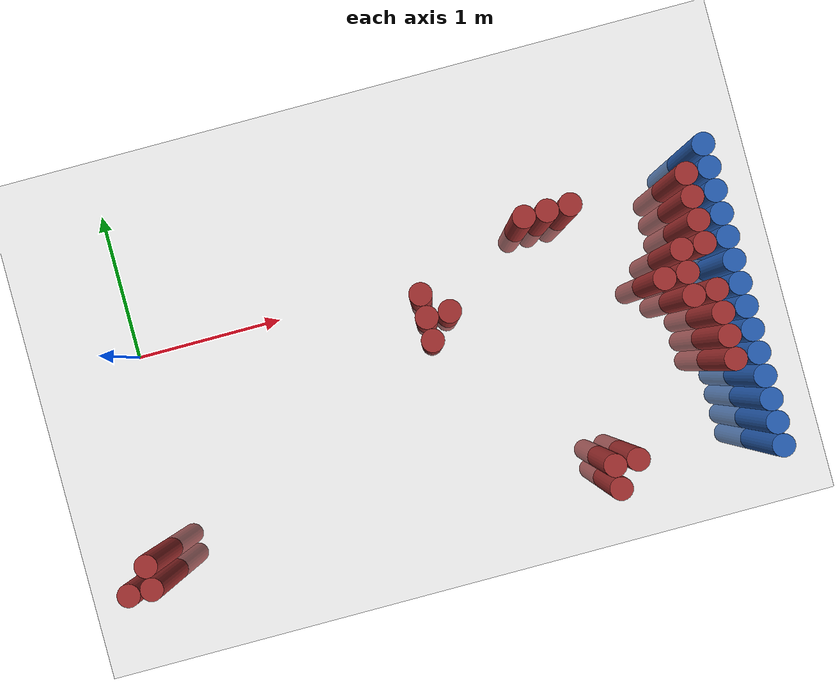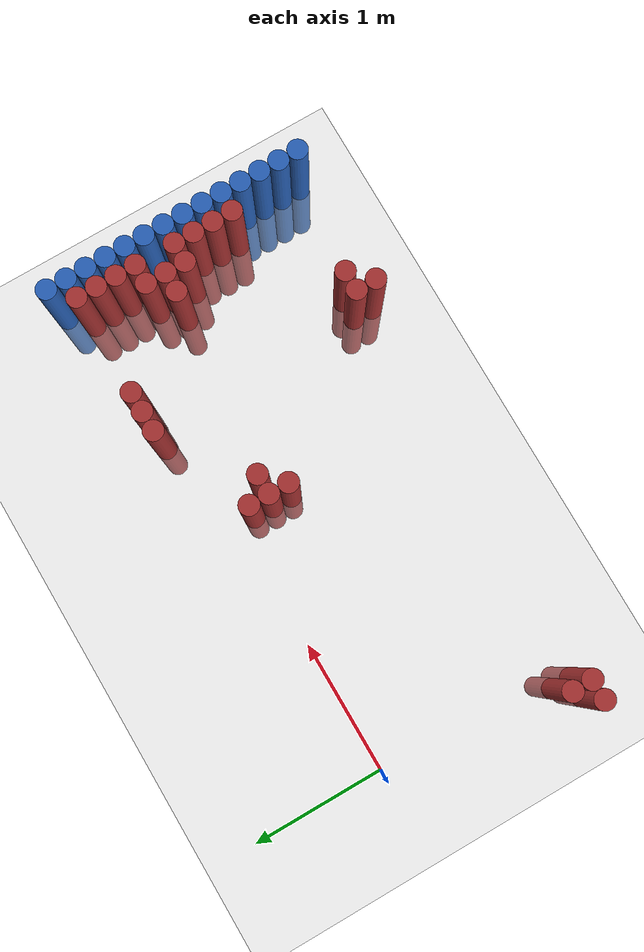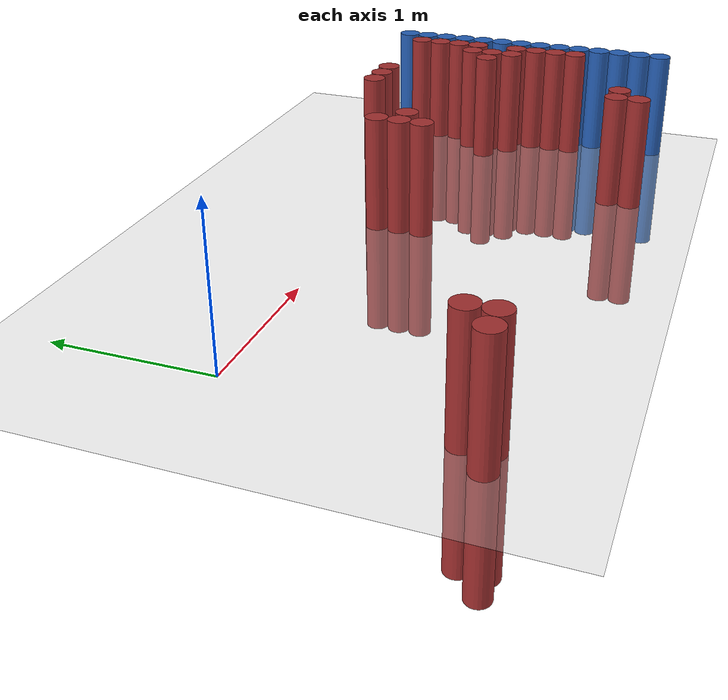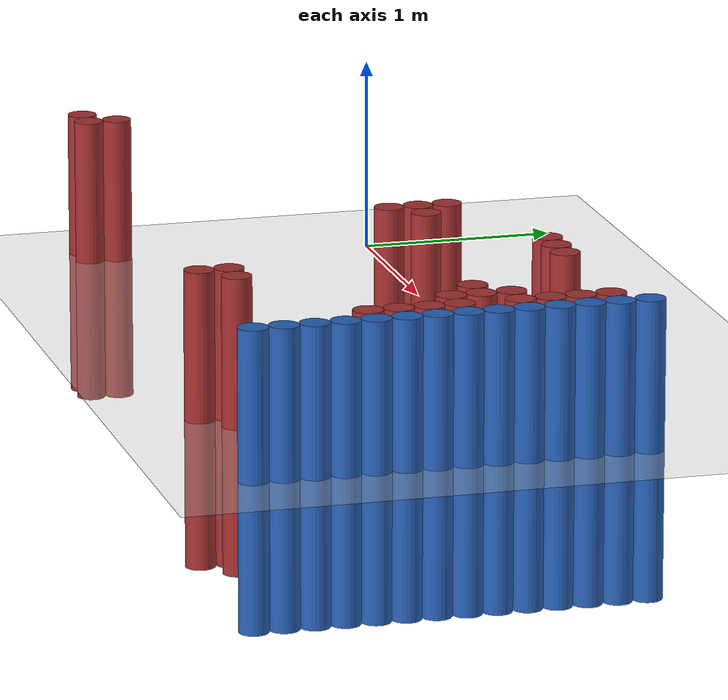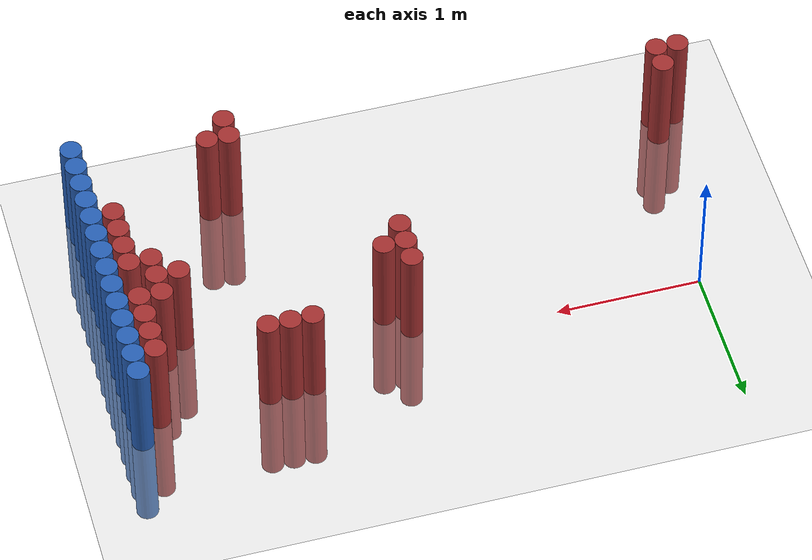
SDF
<sdf version="1.6">
 <world name="default">
  <model name="ground_plane">
   <static>1</static>
   <link name="link">
    <collision name="collision">
     <geometry><plane><normal>0 0 1</normal><size>100 100</size></plane></geometry>
     <surface><friction><ode><mu>100</mu><mu2>50</mu2></ode></friction></surface>
    </collision>
    <visual name="visual">
     <cast_shadows>0</cast_shadows>
     <geometry><plane><normal>0 0 1</normal><size>100 100</size></plane></geometry>
     <material>
      <script><uri>file://media/materials/scripts/gazebo.material</uri><name>Gazebo/Grey</name></script>
     </material>
    </visual>
   </link>
  </model>
  <model name="unit_cylinder_92">
   <static>1</static>
   <pose>3.925000 -1.625000 0.000000 0.000000 0.000000 0.000000</pose>
   <link name="link">
    <inertial>
     <mass>1</mass>
     <inertia><ixx>0.145833</ixx><ixy>0</ixy><ixz>0</ixz><iyy>0.145833</iyy><iyz>0</iyz><izz>0.125</izz></inertia>
    </inertial>
    <collision name="collision">
     <geometry><cylinder><radius>0.075000</radius><length>1.5</length></cylinder></geometry>
    </collision>
    <visual name="visual">
     <geometry><cylinder><radius>0.075000</radius><length>1.5</length></cylinder></geometry>
     <material>
      <ambient>0.152000 0.379000 0.720000 1</ambient>
      <diffuse>0.152000 0.379000 0.720000 1</diffuse>
     </material>
     <material>
      <script><name>Gazebo/Grey</name><uri>file://media/materials/scripts/gazebo.material</uri></script>
     </material>
    </visual>
   </link>
  </model>
  <model name="unit_cylinder_94">
   <static>1</static>
   <pose>3.925000 -1.475000 0.000000 0.000000 0.000000 0.000000</pose>
   <link name="link">
    <inertial>
     <mass>1</mass>
     <inertia><ixx>0.145833</ixx><ixy>0</ixy><ixz>0</ixz><iyy>0.145833</iyy><iyz>0</iyz><izz>0.125</izz></inertia>
    </inertial>
    <collision name="collision">
     <geometry><cylinder><radius>0.075000</radius><length>1.5</length></cylinder></geometry>
    </collision>
    <visual name="visual">
     <geometry><cylinder><radius>0.075000</radius><length>1.5</length></cylinder></geometry>
     <material>
      <ambient>0.152000 0.379000 0.720000 1</ambient>
      <diffuse>0.152000 0.379000 0.720000 1</diffuse>
     </material>
     <material>
      <script><name>Gazebo/Grey</name><uri>file://media/materials/scripts/gazebo.material</uri></script>
     </material>
    </visual>
   </link>
  </model>
  <model name="unit_cylinder_96">
   <static>1</static>
   <pose>3.925000 -1.325000 0.000000 0.000000 0.000000 0.000000</pose>
   <link name="link">
    <inertial>
     <mass>1</mass>
     <inertia><ixx>0.145833</ixx><ixy>0</ixy><ixz>0</ixz><iyy>0.145833</iyy><iyz>0</iyz><izz>0.125</izz></inertia>
    </inertial>
    <collision name="collision">
     <geometry><cylinder><radius>0.075000</radius><length>1.5</length></cylinder></geometry>
    </collision>
    <visual name="visual">
     <geometry><cylinder><radius>0.075000</radius><length>1.5</length></cylinder></geometry>
     <material>
      <ambient>0.152000 0.379000 0.720000 1</ambient>
      <diffuse>0.152000 0.379000 0.720000 1</diffuse>
     </material>
     <material>
      <script><name>Gazebo/Grey</name><uri>file://media/materials/scripts/gazebo.material</uri></script>
     </material>
    </visual>
   </link>
  </model>
  <model name="unit_cylinder_98">
   <static>1</static>
   <pose>3.925000 -1.175000 0.000000 0.000000 0.000000 0.000000</pose>
   <link name="link">
    <inertial>
     <mass>1</mass>
     <inertia><ixx>0.145833</ixx><ixy>0</ixy><ixz>0</ixz><iyy>0.145833</iyy><iyz>0</iyz><izz>0.125</izz></inertia>
    </inertial>
    <collision name="collision">
     <geometry><cylinder><radius>0.075000</radius><length>1.5</length></cylinder></geometry>
    </collision>
    <visual name="visual">
     <geometry><cylinder><radius>0.075000</radius><length>1.5</length></cylinder></geometry>
     <material>
      <ambient>0.152000 0.379000 0.720000 1</ambient>
      <diffuse>0.152000 0.379000 0.720000 1</diffuse>
     </material>
     <material>
      <script><name>Gazebo/Grey</name><uri>file://media/materials/scripts/gazebo.material</uri></script>
     </material>
    </visual>
   </link>
  </model>
  <model name="unit_cylinder_100">
   <static>1</static>
   <pose>3.925000 -1.025000 0.000000 0.000000 0.000000 0.000000</pose>
   <link name="link">
    <inertial>
     <mass>1</mass>
     <inertia><ixx>0.145833</ixx><ixy>0</ixy><ixz>0</ixz><iyy>0.145833</iyy><iyz>0</iyz><izz>0.125</izz></inertia>
    </inertial>
    <collision name="collision">
     <geometry><cylinder><radius>0.075000</radius><length>1.5</length></cylinder></geometry>
    </collision>
    <visual name="visual">
     <geometry><cylinder><radius>0.075000</radius><length>1.5</length></cylinder></geometry>
     <material>
      <ambient>0.152000 0.379000 0.720000 1</ambient>
      <diffuse>0.152000 0.379000 0.720000 1</diffuse>
     </material>
     <material>
      <script><name>Gazebo/Grey</name><uri>file://media/materials/scripts/gazebo.material</uri></script>
     </material>
    </visual>
   </link>
  </model>
  <model name="unit_cylinder_102">
   <static>1</static>
   <pose>3.925000 -0.875000 0.000000 0.000000 0.000000 0.000000</pose>
   <link name="link">
    <inertial>
     <mass>1</mass>
     <inertia><ixx>0.145833</ixx><ixy>0</ixy><ixz>0</ixz><iyy>0.145833</iyy><iyz>0</iyz><izz>0.125</izz></inertia>
    </inertial>
    <collision name="collision">
     <geometry><cylinder><radius>0.075000</radius><length>1.5</length></cylinder></geometry>
    </collision>
    <visual name="visual">
     <geometry><cylinder><radius>0.075000</radius><length>1.5</length></cylinder></geometry>
     <material>
      <ambient>0.152000 0.379000 0.720000 1</ambient>
      <diffuse>0.152000 0.379000 0.720000 1</diffuse>
     </material>
     <material>
      <script><name>Gazebo/Grey</name><uri>file://media/materials/scripts/gazebo.material</uri></script>
     </material>
    </visual>
   </link>
  </model>
  <model name="unit_cylinder_104">
   <static>1</static>
   <pose>3.925000 -0.725000 0.000000 0.000000 0.000000 0.000000</pose>
   <link name="link">
    <inertial>
     <mass>1</mass>
     <inertia><ixx>0.145833</ixx><ixy>0</ixy><ixz>0</ixz><iyy>0.145833</iyy><iyz>0</iyz><izz>0.125</izz></inertia>
    </inertial>
    <collision name="collision">
     <geometry><cylinder><radius>0.075000</radius><length>1.5</length></cylinder></geometry>
    </collision>
    <visual name="visual">
     <geometry><cylinder><radius>0.075000</radius><length>1.5</length></cylinder></geometry>
     <material>
      <ambient>0.152000 0.379000 0.720000 1</ambient>
      <diffuse>0.152000 0.379000 0.720000 1</diffuse>
     </material>
     <material>
      <script><name>Gazebo/Grey</name><uri>file://media/materials/scripts/gazebo.material</uri></script>
     </material>
    </visual>
   </link>
  </model>
  <model name="unit_cylinder_106">
   <static>1</static>
   <pose>3.925000 -0.575000 0.000000 0.000000 0.000000 0.000000</pose>
   <link name="link">
    <inertial>
     <mass>1</mass>
     <inertia><ixx>0.145833</ixx><ixy>0</ixy><ixz>0</ixz><iyy>0.145833</iyy><iyz>0</iyz><izz>0.125</izz></inertia>
    </inertial>
    <collision name="collision">
     <geometry><cylinder><radius>0.075000</radius><length>1.5</length></cylinder></geometry>
    </collision>
    <visual name="visual">
     <geometry><cylinder><radius>0.075000</radius><length>1.5</length></cylinder></geometry>
     <material>
      <ambient>0.152000 0.379000 0.720000 1</ambient>
      <diffuse>0.152000 0.379000 0.720000 1</diffuse>
     </material>
     <material>
      <script><name>Gazebo/Grey</name><uri>file://media/materials/scripts/gazebo.material</uri></script>
     </material>
    </visual>
   </link>
  </model>
  <model name="unit_cylinder_108">
   <static>1</static>
   <pose>3.925000 -0.425000 0.000000 0.000000 0.000000 0.000000</pose>
   <link name="link">
    <inertial>
     <mass>1</mass>
     <inertia><ixx>0.145833</ixx><ixy>0</ixy><ixz>0</ixz><iyy>0.145833</iyy><iyz>0</iyz><izz>0.125</izz></inertia>
    </inertial>
    <collision name="collision">
     <geometry><cylinder><radius>0.075000</radius><length>1.5</length></cylinder></geometry>
    </collision>
    <visual name="visual">
     <geometry><cylinder><radius>0.075000</radius><length>1.5</length></cylinder></geometry>
     <material>
      <ambient>0.152000 0.379000 0.720000 1</ambient>
      <diffuse>0.152000 0.379000 0.720000 1</diffuse>
     </material>
     <material>
      <script><name>Gazebo/Grey</name><uri>file://media/materials/scripts/gazebo.material</uri></script>
     </material>
    </visual>
   </link>
  </model>
  <model name="unit_cylinder_110">
   <static>1</static>
   <pose>3.925000 -0.275000 0.000000 0.000000 0.000000 0.000000</pose>
   <link name="link">
    <inertial>
     <mass>1</mass>
     <inertia><ixx>0.145833</ixx><ixy>0</ixy><ixz>0</ixz><iyy>0.145833</iyy><iyz>0</iyz><izz>0.125</izz></inertia>
    </inertial>
    <collision name="collision">
     <geometry><cylinder><radius>0.075000</radius><length>1.5</length></cylinder></geometry>
    </collision>
    <visual name="visual">
     <geometry><cylinder><radius>0.075000</radius><length>1.5</length></cylinder></geometry>
     <material>
      <ambient>0.152000 0.379000 0.720000 1</ambient>
      <diffuse>0.152000 0.379000 0.720000 1</diffuse>
     </material>
     <material>
      <script><name>Gazebo/Grey</name><uri>file://media/materials/scripts/gazebo.material</uri></script>
     </material>
    </visual>
   </link>
  </model>
  <model name="unit_cylinder_112">
   <static>1</static>
   <pose>3.925000 -0.125000 0.000000 0.000000 0.000000 0.000000</pose>
   <link name="link">
    <inertial>
     <mass>1</mass>
     <inertia><ixx>0.145833</ixx><ixy>0</ixy><ixz>0</ixz><iyy>0.145833</iyy><iyz>0</iyz><izz>0.125</izz></inertia>
    </inertial>
    <collision name="collision">
     <geometry><cylinder><radius>0.075000</radius><length>1.5</length></cylinder></geometry>
    </collision>
    <visual name="visual">
     <geometry><cylinder><radius>0.075000</radius><length>1.5</length></cylinder></geometry>
     <material>
      <ambient>0.152000 0.379000 0.720000 1</ambient>
      <diffuse>0.152000 0.379000 0.720000 1</diffuse>
     </material>
     <material>
      <script><name>Gazebo/Grey</name><uri>file://media/materials/scripts/gazebo.material</uri></script>
     </material>
    </visual>
   </link>
  </model>
  <model name="unit_cylinder_114">
   <static>1</static>
   <pose>3.925000 0.025000 0.000000 0.000000 0.000000 0.000000</pose>
   <link name="link">
    <inertial>
     <mass>1</mass>
     <inertia><ixx>0.145833</ixx><ixy>0</ixy><ixz>0</ixz><iyy>0.145833</iyy><iyz>0</iyz><izz>0.125</izz></inertia>
    </inertial>
    <collision name="collision">
     <geometry><cylinder><radius>0.075000</radius><length>1.5</length></cylinder></geometry>
    </collision>
    <visual name="visual">
     <geometry><cylinder><radius>0.075000</radius><length>1.5</length></cylinder></geometry>
     <material>
      <ambient>0.152000 0.379000 0.720000 1</ambient>
      <diffuse>0.152000 0.379000 0.720000 1</diffuse>
     </material>
     <material>
      <script><name>Gazebo/Grey</name><uri>file://media/materials/scripts/gazebo.material</uri></script>
     </material>
    </visual>
   </link>
  </model>
  <model name="unit_cylinder_116">
   <static>1</static>
   <pose>3.925000 0.175000 0.000000 0.000000 0.000000 0.000000</pose>
   <link name="link">
    <inertial>
     <mass>1</mass>
     <inertia><ixx>0.145833</ixx><ixy>0</ixy><ixz>0</ixz><iyy>0.145833</iyy><iyz>0</iyz><izz>0.125</izz></inertia>
    </inertial>
    <collision name="collision">
     <geometry><cylinder><radius>0.075000</radius><length>1.5</length></cylinder></geometry>
    </collision>
    <visual name="visual">
     <geometry><cylinder><radius>0.075000</radius><length>1.5</length></cylinder></geometry>
     <material>
      <ambient>0.152000 0.379000 0.720000 1</ambient>
      <diffuse>0.152000 0.379000 0.720000 1</diffuse>
     </material>
     <material>
      <script><name>Gazebo/Grey</name><uri>file://media/materials/scripts/gazebo.material</uri></script>
     </material>
    </visual>
   </link>
  </model>
  <model name="unit_cylinder_118">
   <static>1</static>
   <pose>3.925000 0.325000 0.000000 0.000000 0.000000 0.000000</pose>
   <link name="link">
    <inertial>
     <mass>1</mass>
     <inertia><ixx>0.145833</ixx><ixy>0</ixy><ixz>0</ixz><iyy>0.145833</iyy><iyz>0</iyz><izz>0.125</izz></inertia>
    </inertial>
    <collision name="collision">
     <geometry><cylinder><radius>0.075000</radius><length>1.5</length></cylinder></geometry>
    </collision>
    <visual name="visual">
     <geometry><cylinder><radius>0.075000</radius><length>1.5</length></cylinder></geometry>
     <material>
      <ambient>0.152000 0.379000 0.720000 1</ambient>
      <diffuse>0.152000 0.379000 0.720000 1</diffuse>
     </material>
     <material>
      <script><name>Gazebo/Grey</name><uri>file://media/materials/scripts/gazebo.material</uri></script>
     </material>
    </visual>
   </link>
  </model>
  <model name="unit_cylinder_341">
   <static>1</static>
   <pose>-0.275000 -1.475000 0.000000 0.000000 0.000000 0.000000</pose>
   <link name="link">
    <inertial>
     <mass>1</mass>
     <inertia><ixx>0.145833</ixx><ixy>0</ixy><ixz>0</ixz><iyy>0.145833</iyy><iyz>0</iyz><izz>0.125</izz></inertia>
    </inertial>
    <collision name="collision">
     <geometry><cylinder><radius>0.075000</radius><length>1.5</length></cylinder></geometry>
    </collision>
    <visual name="visual">
     <geometry><cylinder><radius>0.075000</radius><length>1.5</length></cylinder></geometry>
     <material>
      <ambient>0.648000 0.192000 0.192000 1</ambient>
      <diffuse>0.648000 0.192000 0.192000 1</diffuse>
     </material>
     <material>
      <script><name>Gazebo/Grey</name><uri>file://media/materials/scripts/gazebo.material</uri></script>
     </material>
    </visual>
   </link>
  </model>
  <model name="unit_cylinder_342">
   <static>1</static>
   <pose>-0.125000 -1.475000 0.000000 0.000000 0.000000 0.000000</pose>
   <link name="link">
    <inertial>
     <mass>1</mass>
     <inertia><ixx>0.145833</ixx><ixy>0</ixy><ixz>0</ixz><iyy>0.145833</iyy><iyz>0</iyz><izz>0.125</izz></inertia>
    </inertial>
    <collision name="collision">
     <geometry><cylinder><radius>0.075000</radius><length>1.5</length></cylinder></geometry>
    </collision>
    <visual name="visual">
     <geometry><cylinder><radius>0.075000</radius><length>1.5</length></cylinder></geometry>
     <material>
      <ambient>0.648000 0.192000 0.192000 1</ambient>
      <diffuse>0.648000 0.192000 0.192000 1</diffuse>
     </material>
     <material>
      <script><name>Gazebo/Grey</name><uri>file://media/materials/scripts/gazebo.material</uri></script>
     </material>
    </visual>
   </link>
  </model>
  <model name="unit_cylinder_343">
   <static>1</static>
   <pose>-0.125000 -1.325000 0.000000 0.000000 0.000000 0.000000</pose>
   <link name="link">
    <inertial>
     <mass>1</mass>
     <inertia><ixx>0.145833</ixx><ixy>0</ixy><ixz>0</ixz><iyy>0.145833</iyy><iyz>0</iyz><izz>0.125</izz></inertia>
    </inertial>
    <collision name="collision">
     <geometry><cylinder><radius>0.075000</radius><length>1.5</length></cylinder></geometry>
    </collision>
    <visual name="visual">
     <geometry><cylinder><radius>0.075000</radius><length>1.5</length></cylinder></geometry>
     <material>
      <ambient>0.648000 0.192000 0.192000 1</ambient>
      <diffuse>0.648000 0.192000 0.192000 1</diffuse>
     </material>
     <material>
      <script><name>Gazebo/Grey</name><uri>file://media/materials/scripts/gazebo.material</uri></script>
     </material>
    </visual>
   </link>
  </model>
  <model name="unit_cylinder_364">
   <static>1</static>
   <pose>1.975000 -0.425000 0.000000 0.000000 0.000000 0.000000</pose>
   <link name="link">
    <inertial>
     <mass>1</mass>
     <inertia><ixx>0.145833</ixx><ixy>0</ixy><ixz>0</ixz><iyy>0.145833</iyy><iyz>0</iyz><izz>0.125</izz></inertia>
    </inertial>
    <collision name="collision">
     <geometry><cylinder><radius>0.075000</radius><length>1.5</length></cylinder></geometry>
    </collision>
    <visual name="visual">
     <geometry><cylinder><radius>0.075000</radius><length>1.5</length></cylinder></geometry>
     <material>
      <ambient>0.648000 0.192000 0.192000 1</ambient>
      <diffuse>0.648000 0.192000 0.192000 1</diffuse>
     </material>
     <material>
      <script><name>Gazebo/Grey</name><uri>file://media/materials/scripts/gazebo.material</uri></script>
     </material>
    </visual>
   </link>
  </model>
  <model name="unit_cylinder_365">
   <static>1</static>
   <pose>1.975000 -0.275000 0.000000 0.000000 0.000000 0.000000</pose>
   <link name="link">
    <inertial>
     <mass>1</mass>
     <inertia><ixx>0.145833</ixx><ixy>0</ixy><ixz>0</ixz><iyy>0.145833</iyy><iyz>0</iyz><izz>0.125</izz></inertia>
    </inertial>
    <collision name="collision">
     <geometry><cylinder><radius>0.075000</radius><length>1.5</length></cylinder></geometry>
    </collision>
    <visual name="visual">
     <geometry><cylinder><radius>0.075000</radius><length>1.5</length></cylinder></geometry>
     <material>
      <ambient>0.648000 0.192000 0.192000 1</ambient>
      <diffuse>0.648000 0.192000 0.192000 1</diffuse>
     </material>
     <material>
      <script><name>Gazebo/Grey</name><uri>file://media/materials/scripts/gazebo.material</uri></script>
     </material>
    </visual>
   </link>
  </model>
  <model name="unit_cylinder_366">
   <static>1</static>
   <pose>1.975000 -0.125000 0.000000 0.000000 0.000000 0.000000</pose>
   <link name="link">
    <inertial>
     <mass>1</mass>
     <inertia><ixx>0.145833</ixx><ixy>0</ixy><ixz>0</ixz><iyy>0.145833</iyy><iyz>0</iyz><izz>0.125</izz></inertia>
    </inertial>
    <collision name="collision">
     <geometry><cylinder><radius>0.075000</radius><length>1.5</length></cylinder></geometry>
    </collision>
    <visual name="visual">
     <geometry><cylinder><radius>0.075000</radius><length>1.5</length></cylinder></geometry>
     <material>
      <ambient>0.648000 0.192000 0.192000 1</ambient>
      <diffuse>0.648000 0.192000 0.192000 1</diffuse>
     </material>
     <material>
      <script><name>Gazebo/Grey</name><uri>file://media/materials/scripts/gazebo.material</uri></script>
     </material>
    </visual>
   </link>
  </model>
  <model name="unit_cylinder_368">
   <static>1</static>
   <pose>2.125000 -0.275000 0.000000 0.000000 0.000000 0.000000</pose>
   <link name="link">
    <inertial>
     <mass>1</mass>
     <inertia><ixx>0.145833</ixx><ixy>0</ixy><ixz>0</ixz><iyy>0.145833</iyy><iyz>0</iyz><izz>0.125</izz></inertia>
    </inertial>
    <collision name="collision">
     <geometry><cylinder><radius>0.075000</radius><length>1.5</length></cylinder></geometry>
    </collision>
    <visual name="visual">
     <geometry><cylinder><radius>0.075000</radius><length>1.5</length></cylinder></geometry>
     <material>
      <ambient>0.648000 0.192000 0.192000 1</ambient>
      <diffuse>0.648000 0.192000 0.192000 1</diffuse>
     </material>
     <material>
      <script><name>Gazebo/Grey</name><uri>file://media/materials/scripts/gazebo.material</uri></script>
     </material>
    </visual>
   </link>
  </model>
  <model name="unit_cylinder_380">
   <static>1</static>
   <pose>2.725000 0.175000 0.000000 0.000000 0.000000 0.000000</pose>
   <link name="link">
    <inertial>
     <mass>1</mass>
     <inertia><ixx>0.145833</ixx><ixy>0</ixy><ixz>0</ixz><iyy>0.145833</iyy><iyz>0</iyz><izz>0.125</izz></inertia>
    </inertial>
    <collision name="collision">
     <geometry><cylinder><radius>0.075000</radius><length>1.5</length></cylinder></geometry>
    </collision>
    <visual name="visual">
     <geometry><cylinder><radius>0.075000</radius><length>1.5</length></cylinder></geometry>
     <material>
      <ambient>0.648000 0.192000 0.192000 1</ambient>
      <diffuse>0.648000 0.192000 0.192000 1</diffuse>
     </material>
     <material>
      <script><name>Gazebo/Grey</name><uri>file://media/materials/scripts/gazebo.material</uri></script>
     </material>
    </visual>
   </link>
  </model>
  <model name="unit_cylinder_385">
   <static>1</static>
   <pose>2.875000 -1.625000 0.000000 0.000000 0.000000 0.000000</pose>
   <link name="link">
    <inertial>
     <mass>1</mass>
     <inertia><ixx>0.145833</ixx><ixy>0</ixy><ixz>0</ixz><iyy>0.145833</iyy><iyz>0</iyz><izz>0.125</izz></inertia>
    </inertial>
    <collision name="collision">
     <geometry><cylinder><radius>0.075000</radius><length>1.5</length></cylinder></geometry>
    </collision>
    <visual name="visual">
     <geometry><cylinder><radius>0.075000</radius><length>1.5</length></cylinder></geometry>
     <material>
      <ambient>0.648000 0.192000 0.192000 1</ambient>
      <diffuse>0.648000 0.192000 0.192000 1</diffuse>
     </material>
     <material>
      <script><name>Gazebo/Grey</name><uri>file://media/materials/scripts/gazebo.material</uri></script>
     </material>
    </visual>
   </link>
  </model>
  <model name="unit_cylinder_386">
   <static>1</static>
   <pose>2.875000 -1.475000 0.000000 0.000000 0.000000 0.000000</pose>
   <link name="link">
    <inertial>
     <mass>1</mass>
     <inertia><ixx>0.145833</ixx><ixy>0</ixy><ixz>0</ixz><iyy>0.145833</iyy><iyz>0</iyz><izz>0.125</izz></inertia>
    </inertial>
    <collision name="collision">
     <geometry><cylinder><radius>0.075000</radius><length>1.5</length></cylinder></geometry>
    </collision>
    <visual name="visual">
     <geometry><cylinder><radius>0.075000</radius><length>1.5</length></cylinder></geometry>
     <material>
      <ambient>0.648000 0.192000 0.192000 1</ambient>
      <diffuse>0.648000 0.192000 0.192000 1</diffuse>
     </material>
     <material>
      <script><name>Gazebo/Grey</name><uri>file://media/materials/scripts/gazebo.material</uri></script>
     </material>
    </visual>
   </link>
  </model>
  <model name="unit_cylinder_387">
   <static>1</static>
   <pose>2.875000 0.175000 0.000000 0.000000 0.000000 0.000000</pose>
   <link name="link">
    <inertial>
     <mass>1</mass>
     <inertia><ixx>0.145833</ixx><ixy>0</ixy><ixz>0</ixz><iyy>0.145833</iyy><iyz>0</iyz><izz>0.125</izz></inertia>
    </inertial>
    <collision name="collision">
     <geometry><cylinder><radius>0.075000</radius><length>1.5</length></cylinder></geometry>
    </collision>
    <visual name="visual">
     <geometry><cylinder><radius>0.075000</radius><length>1.5</length></cylinder></geometry>
     <material>
      <ambient>0.648000 0.192000 0.192000 1</ambient>
      <diffuse>0.648000 0.192000 0.192000 1</diffuse>
     </material>
     <material>
      <script><name>Gazebo/Grey</name><uri>file://media/materials/scripts/gazebo.material</uri></script>
     </material>
    </visual>
   </link>
  </model>
  <model name="unit_cylinder_391">
   <static>1</static>
   <pose>3.025000 -1.475000 0.000000 0.000000 0.000000 0.000000</pose>
   <link name="link">
    <inertial>
     <mass>1</mass>
     <inertia><ixx>0.145833</ixx><ixy>0</ixy><ixz>0</ixz><iyy>0.145833</iyy><iyz>0</iyz><izz>0.125</izz></inertia>
    </inertial>
    <collision name="collision">
     <geometry><cylinder><radius>0.075000</radius><length>1.5</length></cylinder></geometry>
    </collision>
    <visual name="visual">
     <geometry><cylinder><radius>0.075000</radius><length>1.5</length></cylinder></geometry>
     <material>
      <ambient>0.648000 0.192000 0.192000 1</ambient>
      <diffuse>0.648000 0.192000 0.192000 1</diffuse>
     </material>
     <material>
      <script><name>Gazebo/Grey</name><uri>file://media/materials/scripts/gazebo.material</uri></script>
     </material>
    </visual>
   </link>
  </model>
  <model name="unit_cylinder_392">
   <static>1</static>
   <pose>3.025000 0.175000 0.000000 0.000000 0.000000 0.000000</pose>
   <link name="link">
    <inertial>
     <mass>1</mass>
     <inertia><ixx>0.145833</ixx><ixy>0</ixy><ixz>0</ixz><iyy>0.145833</iyy><iyz>0</iyz><izz>0.125</izz></inertia>
    </inertial>
    <collision name="collision">
     <geometry><cylinder><radius>0.075000</radius><length>1.5</length></cylinder></geometry>
    </collision>
    <visual name="visual">
     <geometry><cylinder><radius>0.075000</radius><length>1.5</length></cylinder></geometry>
     <material>
      <ambient>0.648000 0.192000 0.192000 1</ambient>
      <diffuse>0.648000 0.192000 0.192000 1</diffuse>
     </material>
     <material>
      <script><name>Gazebo/Grey</name><uri>file://media/materials/scripts/gazebo.material</uri></script>
     </material>
    </visual>
   </link>
  </model>
  <model name="unit_cylinder_394">
   <static>1</static>
   <pose>3.475000 -0.425000 0.000000 0.000000 0.000000 0.000000</pose>
   <link name="link">
    <inertial>
     <mass>1</mass>
     <inertia><ixx>0.145833</ixx><ixy>0</ixy><ixz>0</ixz><iyy>0.145833</iyy><iyz>0</iyz><izz>0.125</izz></inertia>
    </inertial>
    <collision name="collision">
     <geometry><cylinder><radius>0.075000</radius><length>1.5</length></cylinder></geometry>
    </collision>
    <visual name="visual">
     <geometry><cylinder><radius>0.075000</radius><length>1.5</length></cylinder></geometry>
     <material>
      <ambient>0.648000 0.192000 0.192000 1</ambient>
      <diffuse>0.648000 0.192000 0.192000 1</diffuse>
     </material>
     <material>
      <script><name>Gazebo/Grey</name><uri>file://media/materials/scripts/gazebo.material</uri></script>
     </material>
    </visual>
   </link>
  </model>
  <model name="unit_cylinder_397">
   <static>1</static>
   <pose>3.625000 -0.575000 0.000000 0.000000 0.000000 0.000000</pose>
   <link name="link">
    <inertial>
     <mass>1</mass>
     <inertia><ixx>0.145833</ixx><ixy>0</ixy><ixz>0</ixz><iyy>0.145833</iyy><iyz>0</iyz><izz>0.125</izz></inertia>
    </inertial>
    <collision name="collision">
     <geometry><cylinder><radius>0.075000</radius><length>1.5</length></cylinder></geometry>
    </collision>
    <visual name="visual">
     <geometry><cylinder><radius>0.075000</radius><length>1.5</length></cylinder></geometry>
     <material>
      <ambient>0.648000 0.192000 0.192000 1</ambient>
      <diffuse>0.648000 0.192000 0.192000 1</diffuse>
     </material>
     <material>
      <script><name>Gazebo/Grey</name><uri>file://media/materials/scripts/gazebo.material</uri></script>
     </material>
    </visual>
   </link>
  </model>
  <model name="unit_cylinder_398">
   <static>1</static>
   <pose>3.625000 -0.425000 0.000000 0.000000 0.000000 0.000000</pose>
   <link name="link">
    <inertial>
     <mass>1</mass>
     <inertia><ixx>0.145833</ixx><ixy>0</ixy><ixz>0</ixz><iyy>0.145833</iyy><iyz>0</iyz><izz>0.125</izz></inertia>
    </inertial>
    <collision name="collision">
     <geometry><cylinder><radius>0.075000</radius><length>1.5</length></cylinder></geometry>
    </collision>
    <visual name="visual">
     <geometry><cylinder><radius>0.075000</radius><length>1.5</length></cylinder></geometry>
     <material>
      <ambient>0.648000 0.192000 0.192000 1</ambient>
      <diffuse>0.648000 0.192000 0.192000 1</diffuse>
     </material>
     <material>
      <script><name>Gazebo/Grey</name><uri>file://media/materials/scripts/gazebo.material</uri></script>
     </material>
    </visual>
   </link>
  </model>
  <model name="unit_cylinder_399">
   <static>1</static>
   <pose>3.625000 -0.275000 0.000000 0.000000 0.000000 0.000000</pose>
   <link name="link">
    <inertial>
     <mass>1</mass>
     <inertia><ixx>0.145833</ixx><ixy>0</ixy><ixz>0</ixz><iyy>0.145833</iyy><iyz>0</iyz><izz>0.125</izz></inertia>
    </inertial>
    <collision name="collision">
     <geometry><cylinder><radius>0.075000</radius><length>1.5</length></cylinder></geometry>
    </collision>
    <visual name="visual">
     <geometry><cylinder><radius>0.075000</radius><length>1.5</length></cylinder></geometry>
     <material>
      <ambient>0.648000 0.192000 0.192000 1</ambient>
      <diffuse>0.648000 0.192000 0.192000 1</diffuse>
     </material>
     <material>
      <script><name>Gazebo/Grey</name><uri>file://media/materials/scripts/gazebo.material</uri></script>
     </material>
    </visual>
   </link>
  </model>
  <model name="unit_cylinder_406">
   <static>1</static>
   <pose>3.775000 -1.025000 0.000000 0.000000 0.000000 0.000000</pose>
   <link name="link">
    <inertial>
     <mass>1</mass>
     <inertia><ixx>0.145833</ixx><ixy>0</ixy><ixz>0</ixz><iyy>0.145833</iyy><iyz>0</iyz><izz>0.125</izz></inertia>
    </inertial>
    <collision name="collision">
     <geometry><cylinder><radius>0.075000</radius><length>1.5</length></cylinder></geometry>
    </collision>
    <visual name="visual">
     <geometry><cylinder><radius>0.075000</radius><length>1.5</length></cylinder></geometry>
     <material>
      <ambient>0.648000 0.192000 0.192000 1</ambient>
      <diffuse>0.648000 0.192000 0.192000 1</diffuse>
     </material>
     <material>
      <script><name>Gazebo/Grey</name><uri>file://media/materials/scripts/gazebo.material</uri></script>
     </material>
    </visual>
   </link>
  </model>
  <model name="unit_cylinder_407">
   <static>1</static>
   <pose>3.775000 -0.875000 0.000000 0.000000 0.000000 0.000000</pose>
   <link name="link">
    <inertial>
     <mass>1</mass>
     <inertia><ixx>0.145833</ixx><ixy>0</ixy><ixz>0</ixz><iyy>0.145833</iyy><iyz>0</iyz><izz>0.125</izz></inertia>
    </inertial>
    <collision name="collision">
     <geometry><cylinder><radius>0.075000</radius><length>1.5</length></cylinder></geometry>
    </collision>
    <visual name="visual">
     <geometry><cylinder><radius>0.075000</radius><length>1.5</length></cylinder></geometry>
     <material>
      <ambient>0.648000 0.192000 0.192000 1</ambient>
      <diffuse>0.648000 0.192000 0.192000 1</diffuse>
     </material>
     <material>
      <script><name>Gazebo/Grey</name><uri>file://media/materials/scripts/gazebo.material</uri></script>
     </material>
    </visual>
   </link>
  </model>
  <model name="unit_cylinder_408">
   <static>1</static>
   <pose>3.775000 -0.725000 0.000000 0.000000 0.000000 0.000000</pose>
   <link name="link">
    <inertial>
     <mass>1</mass>
     <inertia><ixx>0.145833</ixx><ixy>0</ixy><ixz>0</ixz><iyy>0.145833</iyy><iyz>0</iyz><izz>0.125</izz></inertia>
    </inertial>
    <collision name="collision">
     <geometry><cylinder><radius>0.075000</radius><length>1.5</length></cylinder></geometry>
    </collision>
    <visual name="visual">
     <geometry><cylinder><radius>0.075000</radius><length>1.5</length></cylinder></geometry>
     <material>
      <ambient>0.648000 0.192000 0.192000 1</ambient>
      <diffuse>0.648000 0.192000 0.192000 1</diffuse>
     </material>
     <material>
      <script><name>Gazebo/Grey</name><uri>file://media/materials/scripts/gazebo.material</uri></script>
     </material>
    </visual>
   </link>
  </model>
  <model name="unit_cylinder_409">
   <static>1</static>
   <pose>3.775000 -0.575000 0.000000 0.000000 0.000000 0.000000</pose>
   <link name="link">
    <inertial>
     <mass>1</mass>
     <inertia><ixx>0.145833</ixx><ixy>0</ixy><ixz>0</ixz><iyy>0.145833</iyy><iyz>0</iyz><izz>0.125</izz></inertia>
    </inertial>
    <collision name="collision">
     <geometry><cylinder><radius>0.075000</radius><length>1.5</length></cylinder></geometry>
    </collision>
    <visual name="visual">
     <geometry><cylinder><radius>0.075000</radius><length>1.5</length></cylinder></geometry>
     <material>
      <ambient>0.648000 0.192000 0.192000 1</ambient>
      <diffuse>0.648000 0.192000 0.192000 1</diffuse>
     </material>
     <material>
      <script><name>Gazebo/Grey</name><uri>file://media/materials/scripts/gazebo.material</uri></script>
     </material>
    </visual>
   </link>
  </model>
  <model name="unit_cylinder_410">
   <static>1</static>
   <pose>3.775000 -0.275000 0.000000 0.000000 0.000000 0.000000</pose>
   <link name="link">
    <inertial>
     <mass>1</mass>
     <inertia><ixx>0.145833</ixx><ixy>0</ixy><ixz>0</ixz><iyy>0.145833</iyy><iyz>0</iyz><izz>0.125</izz></inertia>
    </inertial>
    <collision name="collision">
     <geometry><cylinder><radius>0.075000</radius><length>1.5</length></cylinder></geometry>
    </collision>
    <visual name="visual">
     <geometry><cylinder><radius>0.075000</radius><length>1.5</length></cylinder></geometry>
     <material>
      <ambient>0.648000 0.192000 0.192000 1</ambient>
      <diffuse>0.648000 0.192000 0.192000 1</diffuse>
     </material>
     <material>
      <script><name>Gazebo/Grey</name><uri>file://media/materials/scripts/gazebo.material</uri></script>
     </material>
    </visual>
   </link>
  </model>
  <model name="unit_cylinder_411">
   <static>1</static>
   <pose>3.775000 -0.125000 0.000000 0.000000 0.000000 0.000000</pose>
   <link name="link">
    <inertial>
     <mass>1</mass>
     <inertia><ixx>0.145833</ixx><ixy>0</ixy><ixz>0</ixz><iyy>0.145833</iyy><iyz>0</iyz><izz>0.125</izz></inertia>
    </inertial>
    <collision name="collision">
     <geometry><cylinder><radius>0.075000</radius><length>1.5</length></cylinder></geometry>
    </collision>
    <visual name="visual">
     <geometry><cylinder><radius>0.075000</radius><length>1.5</length></cylinder></geometry>
     <material>
      <ambient>0.648000 0.192000 0.192000 1</ambient>
      <diffuse>0.648000 0.192000 0.192000 1</diffuse>
     </material>
     <material>
      <script><name>Gazebo/Grey</name><uri>file://media/materials/scripts/gazebo.material</uri></script>
     </material>
    </visual>
   </link>
  </model>
  <model name="unit_cylinder_412">
   <static>1</static>
   <pose>3.775000 0.025000 0.000000 0.000000 0.000000 0.000000</pose>
   <link name="link">
    <inertial>
     <mass>1</mass>
     <inertia><ixx>0.145833</ixx><ixy>0</ixy><ixz>0</ixz><iyy>0.145833</iyy><iyz>0</iyz><izz>0.125</izz></inertia>
    </inertial>
    <collision name="collision">
     <geometry><cylinder><radius>0.075000</radius><length>1.5</length></cylinder></geometry>
    </collision>
    <visual name="visual">
     <geometry><cylinder><radius>0.075000</radius><length>1.5</length></cylinder></geometry>
     <material>
      <ambient>0.648000 0.192000 0.192000 1</ambient>
      <diffuse>0.648000 0.192000 0.192000 1</diffuse>
     </material>
     <material>
      <script><name>Gazebo/Grey</name><uri>file://media/materials/scripts/gazebo.material</uri></script>
     </material>
    </visual>
   </link>
  </model>
  <model name="unit_cylinder_413">
   <static>1</static>
   <pose>3.775000 0.175000 0.000000 0.000000 0.000000 0.000000</pose>
   <link name="link">
    <inertial>
     <mass>1</mass>
     <inertia><ixx>0.145833</ixx><ixy>0</ixy><ixz>0</ixz><iyy>0.145833</iyy><iyz>0</iyz><izz>0.125</izz></inertia>
    </inertial>
    <collision name="collision">
     <geometry><cylinder><radius>0.075000</radius><length>1.5</length></cylinder></geometry>
    </collision>
    <visual name="visual">
     <geometry><cylinder><radius>0.075000</radius><length>1.5</length></cylinder></geometry>
     <material>
      <ambient>0.648000 0.192000 0.192000 1</ambient>
      <diffuse>0.648000 0.192000 0.192000 1</diffuse>
     </material>
     <material>
      <script><name>Gazebo/Grey</name><uri>file://media/materials/scripts/gazebo.material</uri></script>
     </material>
    </visual>
   </link>
  </model>
  <model name="unit_cylinder_424">
   <static>1</static>
   <pose>3.925000 -1.625000 0.000000 0.000000 0.000000 0.000000</pose>
   <link name="link">
    <inertial>
     <mass>1</mass>
     <inertia><ixx>0.145833</ixx><ixy>0</ixy><ixz>0</ixz><iyy>0.145833</iyy><iyz>0</iyz><izz>0.125</izz></inertia>
    </inertial>
    <collision name="collision">
     <geometry><cylinder><radius>0.075000</radius><length>1.5</length></cylinder></geometry>
    </collision>
    <visual name="visual">
     <geometry><cylinder><radius>0.075000</radius><length>1.5</length></cylinder></geometry>
     <material>
      <ambient>0.152000 0.379000 0.720000 1</ambient>
      <diffuse>0.152000 0.379000 0.720000 1</diffuse>
     </material>
     <material>
      <script><name>Gazebo/Grey</name><uri>file://media/materials/scripts/gazebo.material</uri></script>
     </material>
    </visual>
   </link>
  </model>
  <model name="unit_cylinder_425">
   <static>1</static>
   <pose>3.925000 -1.475000 0.000000 0.000000 0.000000 0.000000</pose>
   <link name="link">
    <inertial>
     <mass>1</mass>
     <inertia><ixx>0.145833</ixx><ixy>0</ixy><ixz>0</ixz><iyy>0.145833</iyy><iyz>0</iyz><izz>0.125</izz></inertia>
    </inertial>
    <collision name="collision">
     <geometry><cylinder><radius>0.075000</radius><length>1.5</length></cylinder></geometry>
    </collision>
    <visual name="visual">
     <geometry><cylinder><radius>0.075000</radius><length>1.5</length></cylinder></geometry>
     <material>
      <ambient>0.152000 0.379000 0.720000 1</ambient>
      <diffuse>0.152000 0.379000 0.720000 1</diffuse>
     </material>
     <material>
      <script><name>Gazebo/Grey</name><uri>file://media/materials/scripts/gazebo.material</uri></script>
     </material>
    </visual>
   </link>
  </model>
  <model name="unit_cylinder_426">
   <static>1</static>
   <pose>3.925000 -1.325000 0.000000 0.000000 0.000000 0.000000</pose>
   <link name="link">
    <inertial>
     <mass>1</mass>
     <inertia><ixx>0.145833</ixx><ixy>0</ixy><ixz>0</ixz><iyy>0.145833</iyy><iyz>0</iyz><izz>0.125</izz></inertia>
    </inertial>
    <collision name="collision">
     <geometry><cylinder><radius>0.075000</radius><length>1.5</length></cylinder></geometry>
    </collision>
    <visual name="visual">
     <geometry><cylinder><radius>0.075000</radius><length>1.5</length></cylinder></geometry>
     <material>
      <ambient>0.152000 0.379000 0.720000 1</ambient>
      <diffuse>0.152000 0.379000 0.720000 1</diffuse>
     </material>
     <material>
      <script><name>Gazebo/Grey</name><uri>file://media/materials/scripts/gazebo.material</uri></script>
     </material>
    </visual>
   </link>
  </model>
  <model name="unit_cylinder_427">
   <static>1</static>
   <pose>3.925000 -1.175000 0.000000 0.000000 0.000000 0.000000</pose>
   <link name="link">
    <inertial>
     <mass>1</mass>
     <inertia><ixx>0.145833</ixx><ixy>0</ixy><ixz>0</ixz><iyy>0.145833</iyy><iyz>0</iyz><izz>0.125</izz></inertia>
    </inertial>
    <collision name="collision">
     <geometry><cylinder><radius>0.075000</radius><length>1.5</length></cylinder></geometry>
    </collision>
    <visual name="visual">
     <geometry><cylinder><radius>0.075000</radius><length>1.5</length></cylinder></geometry>
     <material>
      <ambient>0.152000 0.379000 0.720000 1</ambient>
      <diffuse>0.152000 0.379000 0.720000 1</diffuse>
     </material>
     <material>
      <script><name>Gazebo/Grey</name><uri>file://media/materials/scripts/gazebo.material</uri></script>
     </material>
    </visual>
   </link>
  </model>
  <model name="unit_cylinder_428">
   <static>1</static>
   <pose>3.925000 -1.025000 0.000000 0.000000 0.000000 0.000000</pose>
   <link name="link">
    <inertial>
     <mass>1</mass>
     <inertia><ixx>0.145833</ixx><ixy>0</ixy><ixz>0</ixz><iyy>0.145833</iyy><iyz>0</iyz><izz>0.125</izz></inertia>
    </inertial>
    <collision name="collision">
     <geometry><cylinder><radius>0.075000</radius><length>1.5</length></cylinder></geometry>
    </collision>
    <visual name="visual">
     <geometry><cylinder><radius>0.075000</radius><length>1.5</length></cylinder></geometry>
     <material>
      <ambient>0.152000 0.379000 0.720000 1</ambient>
      <diffuse>0.152000 0.379000 0.720000 1</diffuse>
     </material>
     <material>
      <script><name>Gazebo/Grey</name><uri>file://media/materials/scripts/gazebo.material</uri></script>
     </material>
    </visual>
   </link>
  </model>
  <model name="unit_cylinder_429">
   <static>1</static>
   <pose>3.925000 -0.875000 0.000000 0.000000 0.000000 0.000000</pose>
   <link name="link">
    <inertial>
     <mass>1</mass>
     <inertia><ixx>0.145833</ixx><ixy>0</ixy><ixz>0</ixz><iyy>0.145833</iyy><iyz>0</iyz><izz>0.125</izz></inertia>
    </inertial>
    <collision name="collision">
     <geometry><cylinder><radius>0.075000</radius><length>1.5</length></cylinder></geometry>
    </collision>
    <visual name="visual">
     <geometry><cylinder><radius>0.075000</radius><length>1.5</length></cylinder></geometry>
     <material>
      <ambient>0.152000 0.379000 0.720000 1</ambient>
      <diffuse>0.152000 0.379000 0.720000 1</diffuse>
     </material>
     <material>
      <script><name>Gazebo/Grey</name><uri>file://media/materials/scripts/gazebo.material</uri></script>
     </material>
    </visual>
   </link>
  </model>
  <model name="unit_cylinder_430">
   <static>1</static>
   <pose>3.925000 -0.725000 0.000000 0.000000 0.000000 0.000000</pose>
   <link name="link">
    <inertial>
     <mass>1</mass>
     <inertia><ixx>0.145833</ixx><ixy>0</ixy><ixz>0</ixz><iyy>0.145833</iyy><iyz>0</iyz><izz>0.125</izz></inertia>
    </inertial>
    <collision name="collision">
     <geometry><cylinder><radius>0.075000</radius><length>1.5</length></cylinder></geometry>
    </collision>
    <visual name="visual">
     <geometry><cylinder><radius>0.075000</radius><length>1.5</length></cylinder></geometry>
     <material>
      <ambient>0.152000 0.379000 0.720000 1</ambient>
      <diffuse>0.152000 0.379000 0.720000 1</diffuse>
     </material>
     <material>
      <script><name>Gazebo/Grey</name><uri>file://media/materials/scripts/gazebo.material</uri></script>
     </material>
    </visual>
   </link>
  </model>
  <model name="unit_cylinder_431">
   <static>1</static>
   <pose>3.925000 -0.575000 0.000000 0.000000 0.000000 0.000000</pose>
   <link name="link">
    <inertial>
     <mass>1</mass>
     <inertia><ixx>0.145833</ixx><ixy>0</ixy><ixz>0</ixz><iyy>0.145833</iyy><iyz>0</iyz><izz>0.125</izz></inertia>
    </inertial>
    <collision name="collision">
     <geometry><cylinder><radius>0.075000</radius><length>1.5</length></cylinder></geometry>
    </collision>
    <visual name="visual">
     <geometry><cylinder><radius>0.075000</radius><length>1.5</length></cylinder></geometry>
     <material>
      <ambient>0.152000 0.379000 0.720000 1</ambient>
      <diffuse>0.152000 0.379000 0.720000 1</diffuse>
     </material>
     <material>
      <script><name>Gazebo/Grey</name><uri>file://media/materials/scripts/gazebo.material</uri></script>
     </material>
    </visual>
   </link>
  </model>
  <model name="unit_cylinder_432">
   <static>1</static>
   <pose>3.925000 -0.425000 0.000000 0.000000 0.000000 0.000000</pose>
   <link name="link">
    <inertial>
     <mass>1</mass>
     <inertia><ixx>0.145833</ixx><ixy>0</ixy><ixz>0</ixz><iyy>0.145833</iyy><iyz>0</iyz><izz>0.125</izz></inertia>
    </inertial>
    <collision name="collision">
     <geometry><cylinder><radius>0.075000</radius><length>1.5</length></cylinder></geometry>
    </collision>
    <visual name="visual">
     <geometry><cylinder><radius>0.075000</radius><length>1.5</length></cylinder></geometry>
     <material>
      <ambient>0.152000 0.379000 0.720000 1</ambient>
      <diffuse>0.152000 0.379000 0.720000 1</diffuse>
     </material>
     <material>
      <script><name>Gazebo/Grey</name><uri>file://media/materials/scripts/gazebo.material</uri></script>
     </material>
    </visual>
   </link>
  </model>
  <model name="unit_cylinder_433">
   <static>1</static>
   <pose>3.925000 -0.275000 0.000000 0.000000 0.000000 0.000000</pose>
   <link name="link">
    <inertial>
     <mass>1</mass>
     <inertia><ixx>0.145833</ixx><ixy>0</ixy><ixz>0</ixz><iyy>0.145833</iyy><iyz>0</iyz><izz>0.125</izz></inertia>
    </inertial>
    <collision name="collision">
     <geometry><cylinder><radius>0.075000</radius><length>1.5</length></cylinder></geometry>
    </collision>
    <visual name="visual">
     <geometry><cylinder><radius>0.075000</radius><length>1.5</length></cylinder></geometry>
     <material>
      <ambient>0.152000 0.379000 0.720000 1</ambient>
      <diffuse>0.152000 0.379000 0.720000 1</diffuse>
     </material>
     <material>
      <script><name>Gazebo/Grey</name><uri>file://media/materials/scripts/gazebo.material</uri></script>
     </material>
    </visual>
   </link>
  </model>
  <model name="unit_cylinder_434">
   <static>1</static>
   <pose>3.925000 -0.125000 0.000000 0.000000 0.000000 0.000000</pose>
   <link name="link">
    <inertial>
     <mass>1</mass>
     <inertia><ixx>0.145833</ixx><ixy>0</ixy><ixz>0</ixz><iyy>0.145833</iyy><iyz>0</iyz><izz>0.125</izz></inertia>
    </inertial>
    <collision name="collision">
     <geometry><cylinder><radius>0.075000</radius><length>1.5</length></cylinder></geometry>
    </collision>
    <visual name="visual">
     <geometry><cylinder><radius>0.075000</radius><length>1.5</length></cylinder></geometry>
     <material>
      <ambient>0.152000 0.379000 0.720000 1</ambient>
      <diffuse>0.152000 0.379000 0.720000 1</diffuse>
     </material>
     <material>
      <script><name>Gazebo/Grey</name><uri>file://media/materials/scripts/gazebo.material</uri></script>
     </material>
    </visual>
   </link>
  </model>
  <model name="unit_cylinder_435">
   <static>1</static>
   <pose>3.925000 0.025000 0.000000 0.000000 0.000000 0.000000</pose>
   <link name="link">
    <inertial>
     <mass>1</mass>
     <inertia><ixx>0.145833</ixx><ixy>0</ixy><ixz>0</ixz><iyy>0.145833</iyy><iyz>0</iyz><izz>0.125</izz></inertia>
    </inertial>
    <collision name="collision">
     <geometry><cylinder><radius>0.075000</radius><length>1.5</length></cylinder></geometry>
    </collision>
    <visual name="visual">
     <geometry><cylinder><radius>0.075000</radius><length>1.5</length></cylinder></geometry>
     <material>
      <ambient>0.152000 0.379000 0.720000 1</ambient>
      <diffuse>0.152000 0.379000 0.720000 1</diffuse>
     </material>
     <material>
      <script><name>Gazebo/Grey</name><uri>file://media/materials/scripts/gazebo.material</uri></script>
     </material>
    </visual>
   </link>
  </model>
  <model name="unit_cylinder_436">
   <static>1</static>
   <pose>3.925000 0.175000 0.000000 0.000000 0.000000 0.000000</pose>
   <link name="link">
    <inertial>
     <mass>1</mass>
     <inertia><ixx>0.145833</ixx><ixy>0</ixy><ixz>0</ixz><iyy>0.145833</iyy><iyz>0</iyz><izz>0.125</izz></inertia>
    </inertial>
    <collision name="collision">
     <geometry><cylinder><radius>0.075000</radius><length>1.5</length></cylinder></geometry>
    </collision>
    <visual name="visual">
     <geometry><cylinder><radius>0.075000</radius><length>1.5</length></cylinder></geometry>
     <material>
      <ambient>0.152000 0.379000 0.720000 1</ambient>
      <diffuse>0.152000 0.379000 0.720000 1</diffuse>
     </material>
     <material>
      <script><name>Gazebo/Grey</name><uri>file://media/materials/scripts/gazebo.material</uri></script>
     </material>
    </visual>
   </link>
  </model>
 </world>
</sdf>
